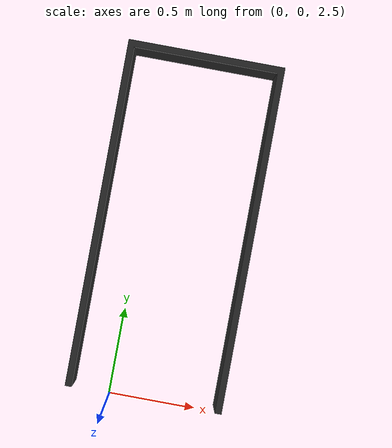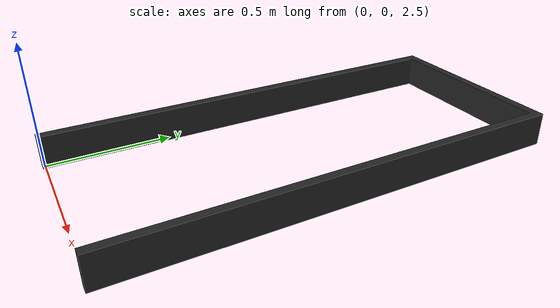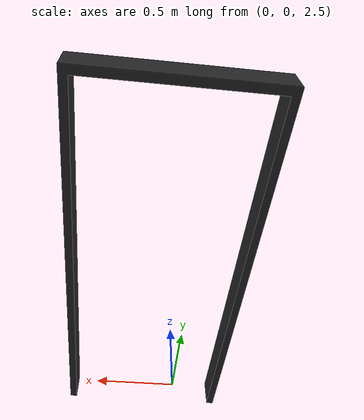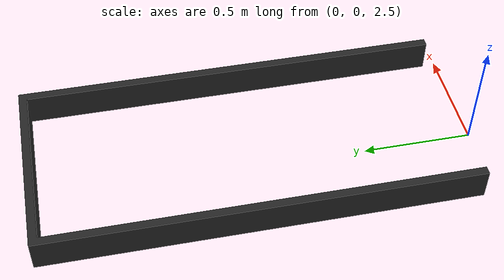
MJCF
<mujoco model="DoorFrame_3a4c68aa">
  <compiler autolimits="true" boundmass="0.01" angle="radian"/>
  <default>
    <default class="/">
      <default class="__VISUAL_MJT__">
        <geom contype="0" conaffinity="0" group="0" mass="1e-08"/>
      </default>
      <default class="__STRUCTURAL_MJT__">
        <geom contype="8" conaffinity="15" group="4" friction="0.90000000000000002 0.90000000000000002 0.001" density="500" solref="0.025000000000000001 1" solimp="0.998 0.998 0.001"/>
      </default>
      <default class="__DYNAMIC_MJT__">
        <geom contype="1" conaffinity="15" group="4" friction="0.90000000000000002 0.90000000000000002 0.001" density="500" solref="0.025000000000000001 1" solimp="0.998 0.998 0.001"/>
      </default>
      <default class="__ARTICULABLE_DYNAMIC_MJT__">
        <geom contype="0" conaffinity="7" group="4" friction="0.90000000000000002 0.90000000000000002 0.001" density="500" solref="0.025000000000000001 1" solimp="0.998 0.998 0.001"/>
      </default>
    </default>
  </default>
  <asset>
    <material name="material_BlackWood" class="/" specular="0.5" shininess="0.5" rgba="0.14705879999999999 0.14705879999999999 0.14705879999999999 1"/>
    <mesh name="DoorFrame_3a4c68aa_DoorFrame_3a4c68aa" class="/" file="DoorFrame_3a4c68aa_DoorFrame_3a4c68aa/DoorFrame_3a4c68aa_DoorFrame_3a4c68aa.obj" scale="1 1 1" inertia="legacy"/>
  </asset>
  <worldbody>
    <body name="DoorFrame_3a4c68aa">
      <body name="DoorFrame_3a4c68aa_DoorFrame_3a4c68aa" pos="-0 0 0" quat="1 0 0 0">
        <geom name="DoorFrame_3a4c68aa_DoorFrame_3a4c68aa" class="__VISUAL_MJT__" type="mesh" material="material_BlackWood" mesh="DoorFrame_3a4c68aa_DoorFrame_3a4c68aa"/>
        <geom name="DoorFrame_3a4c68aa_DoorFrame_3a4c68aa_PrimitiveCollider_0" class="__DYNAMIC_MJT__" type="box" size="0.019704729318618774 1.0111829042434692 0.078563198447227478" rgba="0 1 0 1" pos="-0.23932883143424988 1.0074425935745239 2.4500000476837158" quat="0 1 0 0"/>
        <geom name="DoorFrame_3a4c68aa_DoorFrame_3a4c68aa_PrimitiveCollider_1" class="__DYNAMIC_MJT__" type="box" size="0.019704729318618774 1.0111829042434692 0.078563198447227478" rgba="0 1 0 1" pos="0.6396712064743042 1.0074425935745239 2.4500000476837158" quat="0 1 0 0"/>
        <geom name="DoorFrame_3a4c68aa_DoorFrame_3a4c68aa_PrimitiveCollider_2" class="__DYNAMIC_MJT__" type="box" size="0.45972409844398499 0.019977986812591553 0.078563198447227478" rgba="0 1 0 1" pos="0.19999998807907104 2.0169999599456787 2.4500000476837158" quat="0 1 0 0"/>
      </body>
    </body>
  </worldbody>
</mujoco>
